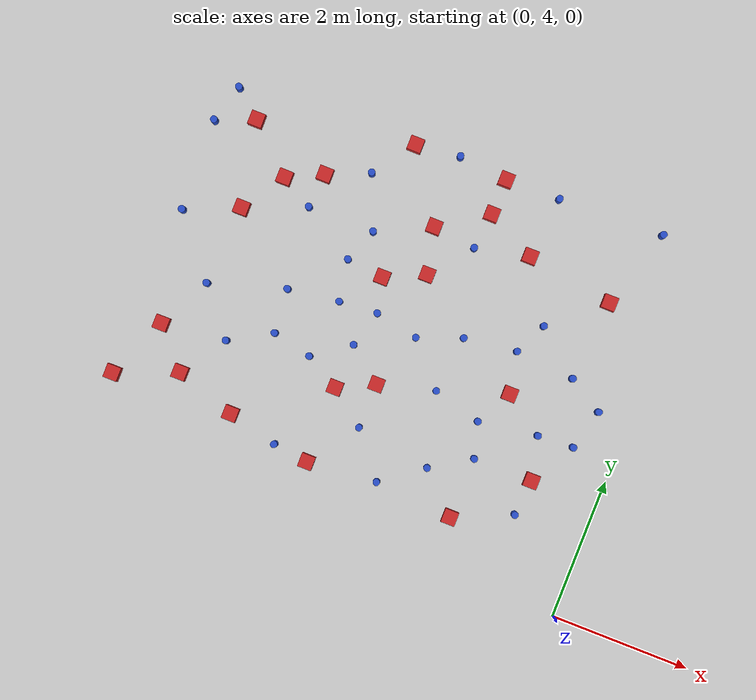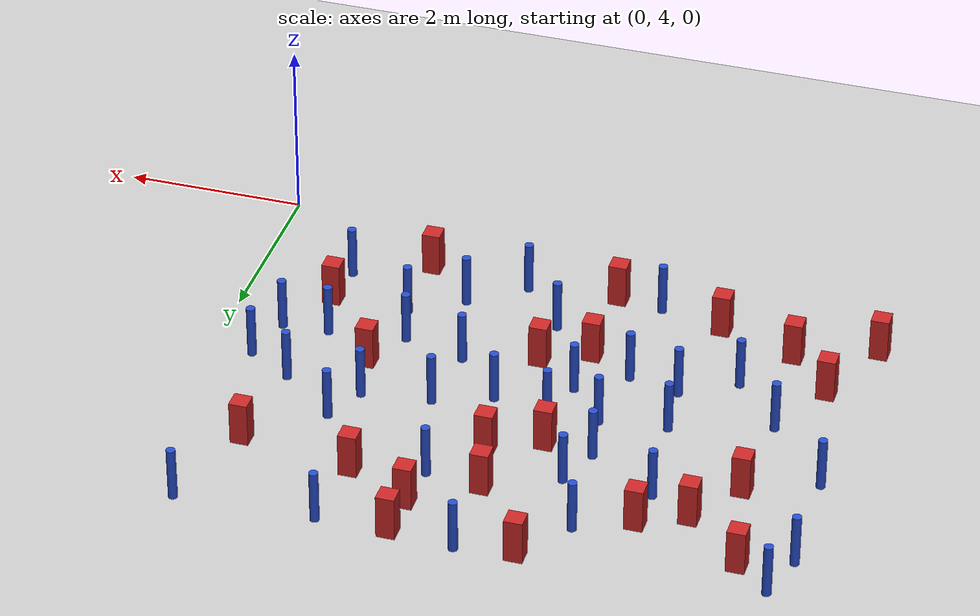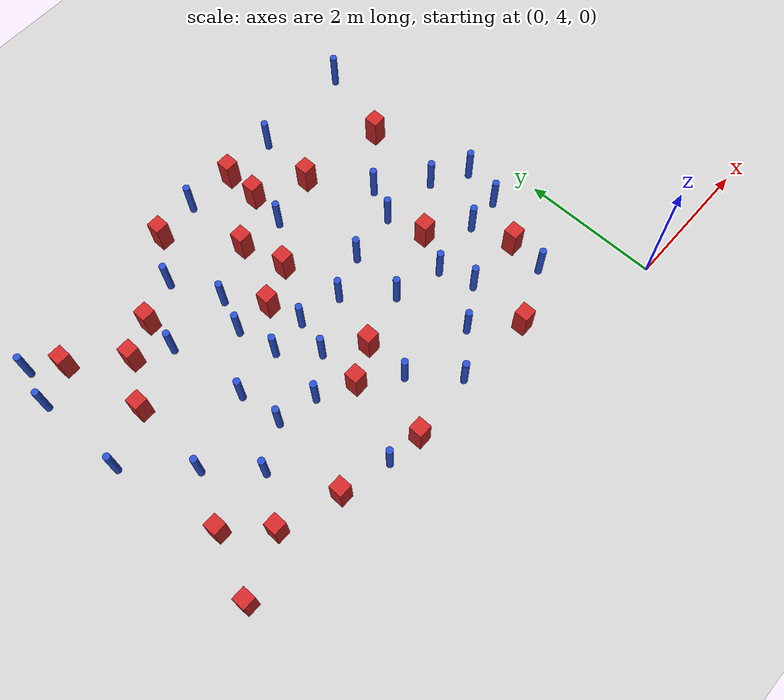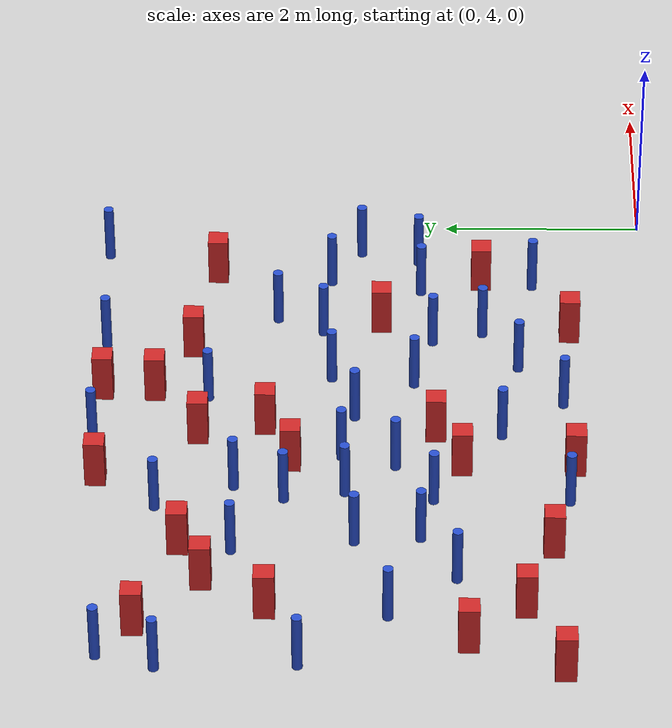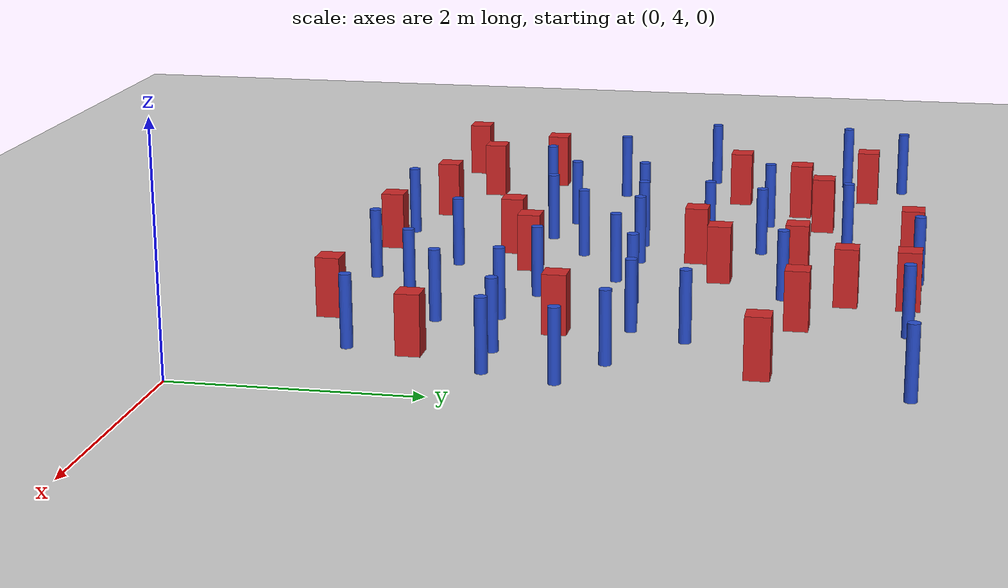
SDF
<sdf version="1.6">
 <world name="default">
  <model name="ground_plane">
   <static>1</static>
   <link name="link">
    <collision name="collision">
     <geometry><plane><normal>0 0 1</normal><size>100 100</size></plane></geometry>
     <surface><friction><ode><mu>100</mu><mu2>50</mu2></ode></friction></surface>
    </collision>
    <visual name="visual">
     <cast_shadows>0</cast_shadows>
     <geometry><plane><normal>0 0 1</normal><size>100 100</size></plane></geometry>
     <material>
      <ambient>1.0 1.0 1.0 1.0</ambient>
      <diffuse>0.8 0.8 0.8 1.0</diffuse>
      <specular>0.01 0.01 0.01 1.000000</specular>
     </material>
    </visual>
   </link>
  </model>
  <model name="square_post_obstacle2">
   <static>true</static>
   <pose>-6.55330883712 5.80059143971 1.91545236811e-07 -7.35059704564e-06 1.12565212e-07 2.39332434364e-05</pose>
   <link name="link">
    <pose>0 0 0.25 0 -0 0</pose>
    <inertial>
     <mass>100</mass>
     <inertia>
      <ixx>0.166667</ixx>
      <ixy>0</ixy>
      <ixz>0</ixz>
      <iyy>0.166667</iyy>
      <iyz>0</iyz>
      <izz>0.166667</izz>
     </inertia>
    </inertial>
    <collision name="collision"><geometry><box><size>.2 .2 .5</size></box></geometry></collision>
    <visual name="visual">
     <geometry><box><size>.2 .2 .5</size></box></geometry>
     <material>
      <script><name>Gazebo/Red</name><uri>file://media/materials/scripts/gazebo.material</uri></script>
     </material>
    </visual>
   </link>
  </model>
  <model name="square_post_obstacle4">
   <static>true</static>
   <pose>-5.7031438525 8.30815203388 1.91545236811e-07 -7.35059704564e-06 1.12565212e-07 2.39332434364e-05</pose>
   <link name="link">
    <pose>0 0 0.25 0 -0 0</pose>
    <inertial>
     <mass>100</mass>
     <inertia>
      <ixx>0.166667</ixx>
      <ixy>0</ixy>
      <ixz>0</ixz>
      <iyy>0.166667</iyy>
      <iyz>0</iyz>
      <izz>0.166667</izz>
     </inertia>
    </inertial>
    <collision name="collision"><geometry><box><size>.2 .2 .5</size></box></geometry></collision>
    <visual name="visual">
     <geometry><box><size>.2 .2 .5</size></box></geometry>
     <material>
      <script><name>Gazebo/Red</name><uri>file://media/materials/scripts/gazebo.material</uri></script>
     </material>
    </visual>
   </link>
  </model>
  <model name="pole_obstacle4">
   <static>true</static>
   <pose>-3.96188056806 6.49615191888 7.38925637345e-09 -8.47170692799e-08 1.24976764985e-08 -1.74513093022e-07</pose>
   <link name="link">
    <pose>0 0 0.3 0 -0 0</pose>
    <inertial>
     <mass>1</mass>
     <inertia><ixx>0.145833</ixx><ixy>0</ixy><ixz>0</ixz><iyy>0.145833</iyy><iyz>0</iyz><izz>0.125</izz></inertia>
    </inertial>
    <collision name="collision">
     <geometry><cylinder><radius>0.05</radius><length>.6</length></cylinder></geometry>
    </collision>
    <visual name="visual">
     <geometry><cylinder><radius>0.05</radius><length>.6</length></cylinder></geometry>
     <material>
      <script><name>Gazebo/Blue</name><uri>file://media/materials/scripts/gazebo.material</uri></script>
     </material>
    </visual>
   </link>
  </model>
  <model name="pole_obstacle10">
   <static>true</static>
   <pose>-1.12531300826 6.25755355994 7.38925637345e-09 -8.47170692799e-08 1.24976765033e-08 -1.74513093018e-07</pose>
   <link name="link">
    <pose>0 0 0.3 0 -0 0</pose>
    <inertial>
     <mass>1</mass>
     <inertia><ixx>0.145833</ixx><ixy>0</ixy><ixz>0</ixz><iyy>0.145833</iyy><iyz>0</iyz><izz>0.125</izz></inertia>
    </inertial>
    <collision name="collision">
     <geometry><cylinder><radius>0.05</radius><length>.6</length></cylinder></geometry>
    </collision>
    <visual name="visual">
     <geometry><cylinder><radius>0.05</radius><length>.6</length></cylinder></geometry>
     <material>
      <script><name>Gazebo/Blue</name><uri>file://media/materials/scripts/gazebo.material</uri></script>
     </material>
    </visual>
   </link>
  </model>
  <model name="pole_obstacle12">
   <static>true</static>
   <pose>-1.02231490212 5.12306557846 7.38925637345e-09 -8.47170692799e-08 1.2497676505e-08 -1.74513093018e-07</pose>
   <link name="link">
    <pose>0 0 0.3 0 -0 0</pose>
    <inertial>
     <mass>1</mass>
     <inertia><ixx>0.145833</ixx><ixy>0</ixy><ixz>0</ixz><iyy>0.145833</iyy><iyz>0</iyz><izz>0.125</izz></inertia>
    </inertial>
    <collision name="collision">
     <geometry><cylinder><radius>0.05</radius><length>.6</length></cylinder></geometry>
    </collision>
    <visual name="visual">
     <geometry><cylinder><radius>0.05</radius><length>.6</length></cylinder></geometry>
     <material>
      <script><name>Gazebo/Blue</name><uri>file://media/materials/scripts/gazebo.material</uri></script>
     </material>
    </visual>
   </link>
  </model>
  <model name="pole_obstacle25">
   <static>true</static>
   <pose>-1.97173539096 6.13829068546 7.38925637345e-09 -8.47170692799e-08 1.2497676507e-08 -1.74513093016e-07</pose>
   <link name="link">
    <pose>0 0 0.3 0 -0 0</pose>
    <inertial>
     <mass>1</mass>
     <inertia><ixx>0.145833</ixx><ixy>0</ixy><ixz>0</ixz><iyy>0.145833</iyy><iyz>0</iyz><izz>0.125</izz></inertia>
    </inertial>
    <collision name="collision">
     <geometry><cylinder><radius>0.05</radius><length>.6</length></cylinder></geometry>
    </collision>
    <visual name="visual">
     <geometry><cylinder><radius>0.05</radius><length>.6</length></cylinder></geometry>
     <material>
      <script><name>Gazebo/Blue</name><uri>file://media/materials/scripts/gazebo.material</uri></script>
     </material>
    </visual>
   </link>
  </model>
  <model name="pole_obstacle26">
   <static>true</static>
   <pose>-4.36678302423 6.981008092 7.38925637345e-09 -8.47170692796e-08 1.24976764786e-08 -1.74513093032e-07</pose>
   <link name="link">
    <pose>0 0 0.3 0 -0 0</pose>
    <inertial>
     <mass>1</mass>
     <inertia><ixx>0.145833</ixx><ixy>0</ixy><ixz>0</ixz><iyy>0.145833</iyy><iyz>0</iyz><izz>0.125</izz></inertia>
    </inertial>
    <collision name="collision">
     <geometry><cylinder><radius>0.05</radius><length>.6</length></cylinder></geometry>
    </collision>
    <visual name="visual">
     <geometry><cylinder><radius>0.05</radius><length>.6</length></cylinder></geometry>
     <material>
      <script><name>Gazebo/Blue</name><uri>file://media/materials/scripts/gazebo.material</uri></script>
     </material>
    </visual>
   </link>
  </model>
  <model name="pole_obstacle41">
   <static>true</static>
   <pose>-6.16991193099 6.54938115663 7.38925637345e-09 -8.47170692796e-08 1.24976764786e-08 -1.74513093032e-07</pose>
   <link name="link">
    <pose>0 0 0.3 0 -0 0</pose>
    <inertial>
     <mass>1</mass>
     <inertia><ixx>0.145833</ixx><ixy>0</ixy><ixz>0</ixz><iyy>0.145833</iyy><iyz>0</iyz><izz>0.125</izz></inertia>
    </inertial>
    <collision name="collision">
     <geometry><cylinder><radius>0.05</radius><length>.6</length></cylinder></geometry>
    </collision>
    <visual name="visual">
     <geometry><cylinder><radius>0.05</radius><length>.6</length></cylinder></geometry>
     <material>
      <script><name>Gazebo/Blue</name><uri>file://media/materials/scripts/gazebo.material</uri></script>
     </material>
    </visual>
   </link>
  </model>
  <model name="pole_obstacle47">
   <static>true</static>
   <pose>-3.53891331987 9.46466004652 7.38925637345e-09 -8.47170692799e-08 1.24976765012e-08 -1.74513093021e-07</pose>
   <link name="link">
    <pose>0 0 0.3 0 -0 0</pose>
    <inertial>
     <mass>1</mass>
     <inertia><ixx>0.145833</ixx><ixy>0</ixy><ixz>0</ixz><iyy>0.145833</iyy><iyz>0</iyz><izz>0.125</izz></inertia>
    </inertial>
    <collision name="collision">
     <geometry><cylinder><radius>0.05</radius><length>.6</length></cylinder></geometry>
    </collision>
    <visual name="visual">
     <geometry><cylinder><radius>0.05</radius><length>.6</length></cylinder></geometry>
     <material>
      <script><name>Gazebo/Blue</name><uri>file://media/materials/scripts/gazebo.material</uri></script>
     </material>
    </visual>
   </link>
  </model>
  <model name="square_post_obstacle51">
   <static>true</static>
   <pose>-3.52160766609 8.43057119418 1.91545236811e-07 -7.35059704564e-06 1.12565212e-07 2.39332434364e-05</pose>
   <link name="link">
    <pose>0 0 0.25 0 -0 0</pose>
    <inertial>
     <mass>100</mass>
     <inertia>
      <ixx>0.166667</ixx>
      <ixy>0</ixy>
      <ixz>0</ixz>
      <iyy>0.166667</iyy>
      <iyz>0</iyz>
      <izz>0.166667</izz>
     </inertia>
    </inertial>
    <collision name="collision"><geometry><box><size>.2 .2 .5</size></box></geometry></collision>
    <visual name="visual">
     <geometry><box><size>.2 .2 .5</size></box></geometry>
     <material>
      <script><name>Gazebo/Red</name><uri>file://media/materials/scripts/gazebo.material</uri></script>
     </material>
    </visual>
   </link>
  </model>
  <model name="pole_obstacle55">
   <static>true</static>
   <pose>-4.59961219676 8.80474779534 7.38925637345e-09 -8.471706928e-08 1.24976765081e-08 -1.74513093015e-07</pose>
   <link name="link">
    <pose>0 0 0.3 0 -0 0</pose>
    <inertial>
     <mass>1</mass>
     <inertia><ixx>0.145833</ixx><ixy>0</ixy><ixz>0</ixz><iyy>0.145833</iyy><iyz>0</iyz><izz>0.125</izz></inertia>
    </inertial>
    <collision name="collision">
     <geometry><cylinder><radius>0.05</radius><length>.6</length></cylinder></geometry>
    </collision>
    <visual name="visual">
     <geometry><cylinder><radius>0.05</radius><length>.6</length></cylinder></geometry>
     <material>
      <script><name>Gazebo/Blue</name><uri>file://media/materials/scripts/gazebo.material</uri></script>
     </material>
    </visual>
   </link>
  </model>
  <model name="square_post_obstacle60">
   <static>true</static>
   <pose>-5.19773577523 8.54897657276 1.91545236811e-07 -7.35059704564e-06 1.12565212e-07 2.39332434364e-05</pose>
   <link name="link">
    <pose>0 0 0.25 0 -0 0</pose>
    <inertial>
     <mass>100</mass>
     <inertia>
      <ixx>0.166667</ixx>
      <ixy>0</ixy>
      <ixz>0</ixz>
      <iyy>0.166667</iyy>
      <iyz>0</iyz>
      <izz>0.166667</izz>
     </inertia>
    </inertial>
    <collision name="collision"><geometry><box><size>.2 .2 .5</size></box></geometry></collision>
    <visual name="visual">
     <geometry><box><size>.2 .2 .5</size></box></geometry>
     <material>
      <script><name>Gazebo/Red</name><uri>file://media/materials/scripts/gazebo.material</uri></script>
     </material>
    </visual>
   </link>
  </model>
  <model name="pole_obstacle61">
   <static>true</static>
   <pose>-2.89891604436 8.35542777784 7.38925637345e-09 -8.47170692793e-08 1.24976764408e-08 -1.74513093041e-07</pose>
   <link name="link">
    <pose>0 0 0.3 0 -0 0</pose>
    <inertial>
     <mass>1</mass>
     <inertia><ixx>0.145833</ixx><ixy>0</ixy><ixz>0</ixz><iyy>0.145833</iyy><iyz>0</iyz><izz>0.125</izz></inertia>
    </inertial>
    <collision name="collision">
     <geometry><cylinder><radius>0.05</radius><length>.6</length></cylinder></geometry>
    </collision>
    <visual name="visual">
     <geometry><cylinder><radius>0.05</radius><length>.6</length></cylinder></geometry>
     <material>
      <script><name>Gazebo/Blue</name><uri>file://media/materials/scripts/gazebo.material</uri></script>
     </material>
    </visual>
   </link>
  </model>
  <model name="pole_obstacle65">
   <static>true</static>
   <pose>-6.89781854437 8.68763136512 7.38925637345e-09 -8.471706928e-08 1.24976765081e-08 -1.74513093015e-07</pose>
   <link name="link">
    <pose>0 0 0.3 0 -0 0</pose>
    <inertial>
     <mass>1</mass>
     <inertia><ixx>0.145833</ixx><ixy>0</ixy><ixz>0</ixz><iyy>0.145833</iyy><iyz>0</iyz><izz>0.125</izz></inertia>
    </inertial>
    <collision name="collision">
     <geometry><cylinder><radius>0.05</radius><length>.6</length></cylinder></geometry>
    </collision>
    <visual name="visual">
     <geometry><cylinder><radius>0.05</radius><length>.6</length></cylinder></geometry>
     <material>
      <script><name>Gazebo/Blue</name><uri>file://media/materials/scripts/gazebo.material</uri></script>
     </material>
    </visual>
   </link>
  </model>
  <model name="square_post_obstacle68">
   <static>true</static>
   <pose>-1.84603409252 4.76177784278 1.91545236811e-07 -7.35059704564e-06 1.12565212e-07 2.39332434364e-05</pose>
   <link name="link">
    <pose>0 0 0.25 0 -0 0</pose>
    <inertial>
     <mass>100</mass>
     <inertia>
      <ixx>0.166667</ixx>
      <ixy>0</ixy>
      <ixz>0</ixz>
      <iyy>0.166667</iyy>
      <iyz>0</iyz>
      <izz>0.166667</izz>
     </inertia>
    </inertial>
    <collision name="collision"><geometry><box><size>.2 .2 .5</size></box></geometry></collision>
    <visual name="visual">
     <geometry><box><size>.2 .2 .5</size></box></geometry>
     <material>
      <script><name>Gazebo/Red</name><uri>file://media/materials/scripts/gazebo.material</uri></script>
     </material>
    </visual>
   </link>
  </model>
  <model name="square_post_obstacle72">
   <static>true</static>
   <pose>-2.82768201751 9.40125721459 1.91545236811e-07 -7.35059704564e-06 1.12565212e-07 2.39332434364e-05</pose>
   <link name="link">
    <pose>0 0 0.25 0 -0 0</pose>
    <inertial>
     <mass>100</mass>
     <inertia>
      <ixx>0.166667</ixx>
      <ixy>0</ixy>
      <ixz>0</ixz>
      <iyy>0.166667</iyy>
      <iyz>0</iyz>
      <izz>0.166667</izz>
     </inertia>
    </inertial>
    <collision name="collision"><geometry><box><size>.2 .2 .5</size></box></geometry></collision>
    <visual name="visual">
     <geometry><box><size>.2 .2 .5</size></box></geometry>
     <material>
      <script><name>Gazebo/Red</name><uri>file://media/materials/scripts/gazebo.material</uri></script>
     </material>
    </visual>
   </link>
  </model>
  <model name="square_post_obstacle75">
   <static>true</static>
   <pose>-5.2025394599 4.98617583692 1.91545236811e-07 -7.35059704564e-06 1.12565212e-07 2.39332434364e-05</pose>
   <link name="link">
    <pose>0 0 0.25 0 -0 0</pose>
    <inertial>
     <mass>100</mass>
     <inertia>
      <ixx>0.166667</ixx>
      <ixy>0</ixy>
      <ixz>0</ixz>
      <iyy>0.166667</iyy>
      <iyz>0</iyz>
      <izz>0.166667</izz>
     </inertia>
    </inertial>
    <collision name="collision"><geometry><box><size>.2 .2 .5</size></box></geometry></collision>
    <visual name="visual">
     <geometry><box><size>.2 .2 .5</size></box></geometry>
     <material>
      <script><name>Gazebo/Red</name><uri>file://media/materials/scripts/gazebo.material</uri></script>
     </material>
    </visual>
   </link>
  </model>
  <model name="pole_obstacle72">
   <static>true</static>
   <pose>-1.81863295968 7.23956448631 7.38925637345e-09 -8.47170692799e-08 1.24976765033e-08 -1.74513093018e-07</pose>
   <link name="link">
    <pose>0 0 0.3 0 -0 0</pose>
    <inertial>
     <mass>1</mass>
     <inertia><ixx>0.145833</ixx><ixy>0</ixy><ixz>0</ixz><iyy>0.145833</iyy><iyz>0</iyz><izz>0.125</izz></inertia>
    </inertial>
    <collision name="collision">
     <geometry><cylinder><radius>0.05</radius><length>.6</length></cylinder></geometry>
    </collision>
    <visual name="visual">
     <geometry><cylinder><radius>0.05</radius><length>.6</length></cylinder></geometry>
     <material>
      <script><name>Gazebo/Blue</name><uri>file://media/materials/scripts/gazebo.material</uri></script>
     </material>
    </visual>
   </link>
  </model>
  <model name="pole_obstacle78">
   <static>true</static>
   <pose>-3.19649911198 6.90304379356 7.38925637345e-09 -8.47170692794e-08 1.24976764468e-08 -1.7451309304e-07</pose>
   <link name="link">
    <pose>0 0 0.3 0 -0 0</pose>
    <inertial>
     <mass>1</mass>
     <inertia><ixx>0.145833</ixx><ixy>0</ixy><ixz>0</ixz><iyy>0.145833</iyy><iyz>0</iyz><izz>0.125</izz></inertia>
    </inertial>
    <collision name="collision">
     <geometry><cylinder><radius>0.05</radius><length>.6</length></cylinder></geometry>
    </collision>
    <visual name="visual">
     <geometry><cylinder><radius>0.05</radius><length>.6</length></cylinder></geometry>
     <material>
      <script><name>Gazebo/Blue</name><uri>file://media/materials/scripts/gazebo.material</uri></script>
     </material>
    </visual>
   </link>
  </model>
  <model name="pole_obstacle82">
   <static>true</static>
   <pose>-3.81674456465 7.02266941737 7.38925637345e-09 -8.47170692798e-08 1.24976765033e-08 -1.74513093019e-07</pose>
   <link name="link">
    <pose>0 0 0.3 0 -0 0</pose>
    <inertial>
     <mass>1</mass>
     <inertia><ixx>0.145833</ixx><ixy>0</ixy><ixz>0</ixz><iyy>0.145833</iyy><iyz>0</iyz><izz>0.125</izz></inertia>
    </inertial>
    <collision name="collision">
     <geometry><cylinder><radius>0.05</radius><length>.6</length></cylinder></geometry>
    </collision>
    <visual name="visual">
     <geometry><cylinder><radius>0.05</radius><length>.6</length></cylinder></geometry>
     <material>
      <script><name>Gazebo/Blue</name><uri>file://media/materials/scripts/gazebo.material</uri></script>
     </material>
    </visual>
   </link>
  </model>
  <model name="pole_obstacle84">
   <static>true</static>
   <pose>-2.66210192664 6.32100580744 7.38925637345e-09 -8.47170692798e-08 1.24976765033e-08 -1.74513093019e-07</pose>
   <link name="link">
    <pose>0 0 0.3 0 -0 0</pose>
    <inertial>
     <mass>1</mass>
     <inertia><ixx>0.145833</ixx><ixy>0</ixy><ixz>0</ixz><iyy>0.145833</iyy><iyz>0</iyz><izz>0.125</izz></inertia>
    </inertial>
    <collision name="collision">
     <geometry><cylinder><radius>0.05</radius><length>.6</length></cylinder></geometry>
    </collision>
    <visual name="visual">
     <geometry><cylinder><radius>0.05</radius><length>.6</length></cylinder></geometry>
     <material>
      <script><name>Gazebo/Blue</name><uri>file://media/materials/scripts/gazebo.material</uri></script>
     </material>
    </visual>
   </link>
  </model>
  <model name="square_post_obstacle90">
   <static>true</static>
   <pose>-2.13134500882 8.53408260791 1.91545236811e-07 -7.35059704564e-06 1.12565212e-07 2.39332434364e-05</pose>
   <link name="link">
    <pose>0 0 0.25 0 -0 0</pose>
    <inertial>
     <mass>100</mass>
     <inertia>
      <ixx>0.166667</ixx>
      <ixy>0</ixy>
      <ixz>0</ixz>
      <iyy>0.166667</iyy>
      <iyz>0</iyz>
      <izz>0.166667</izz>
     </inertia>
    </inertial>
    <collision name="collision"><geometry><box><size>.2 .2 .5</size></box></geometry></collision>
    <visual name="visual">
     <geometry><box><size>.2 .2 .5</size></box></geometry>
     <material>
      <script><name>Gazebo/Red</name><uri>file://media/materials/scripts/gazebo.material</uri></script>
     </material>
    </visual>
   </link>
  </model>
  <model name="pole_obstacle105">
   <static>true</static>
   <pose>-6.74098376526 9.23417818825 7.38925637345e-09 -8.471706928e-08 1.24976765081e-08 -1.74513093015e-07</pose>
   <link name="link">
    <pose>0 0 0.3 0 -0 0</pose>
    <inertial>
     <mass>1</mass>
     <inertia><ixx>0.145833</ixx><ixy>0</ixy><ixz>0</ixz><iyy>0.145833</iyy><iyz>0</iyz><izz>0.125</izz></inertia>
    </inertial>
    <collision name="collision">
     <geometry><cylinder><radius>0.05</radius><length>.6</length></cylinder></geometry>
    </collision>
    <visual name="visual">
     <geometry><cylinder><radius>0.05</radius><length>.6</length></cylinder></geometry>
     <material>
      <script><name>Gazebo/Blue</name><uri>file://media/materials/scripts/gazebo.material</uri></script>
     </material>
    </visual>
   </link>
  </model>
  <model name="square_post_obstacle97">
   <static>true</static>
   <pose>-3.36924682812 7.77776344247 1.91545236811e-07 -7.35059704564e-06 1.12565212e-07 2.39332434364e-05</pose>
   <link name="link">
    <pose>0 0 0.25 0 -0 0</pose>
    <inertial>
     <mass>100</mass>
     <inertia>
      <ixx>0.166667</ixx>
      <ixy>0</ixy>
      <ixz>0</ixz>
      <iyy>0.166667</iyy>
      <iyz>0</iyz>
      <izz>0.166667</izz>
     </inertia>
    </inertial>
    <collision name="collision"><geometry><box><size>.2 .2 .5</size></box></geometry></collision>
    <visual name="visual">
     <geometry><box><size>.2 .2 .5</size></box></geometry>
     <material>
      <script><name>Gazebo/Red</name><uri>file://media/materials/scripts/gazebo.material</uri></script>
     </material>
    </visual>
   </link>
  </model>
  <model name="pole_obstacle110">
   <static>true</static>
   <pose>-3.47279812764 5.45671535539 7.38925637345e-09 -8.47170692798e-08 1.24976765033e-08 -1.74513093019e-07</pose>
   <link name="link">
    <pose>0 0 0.3 0 -0 0</pose>
    <inertial>
     <mass>1</mass>
     <inertia><ixx>0.145833</ixx><ixy>0</ixy><ixz>0</ixz><iyy>0.145833</iyy><iyz>0</iyz><izz>0.125</izz></inertia>
    </inertial>
    <collision name="collision">
     <geometry><cylinder><radius>0.05</radius><length>.6</length></cylinder></geometry>
    </collision>
    <visual name="visual">
     <geometry><cylinder><radius>0.05</radius><length>.6</length></cylinder></geometry>
     <material>
      <script><name>Gazebo/Blue</name><uri>file://media/materials/scripts/gazebo.material</uri></script>
     </material>
    </visual>
   </link>
  </model>
  <model name="square_post_obstacle100">
   <static>true</static>
   <pose>-4.17623640561 9.39427509879 1.91545236811e-07 -7.35059704564e-06 1.12565212e-07 2.39332434364e-05</pose>
   <link name="link">
    <pose>0 0 0.25 0 -0 0</pose>
    <inertial>
     <mass>100</mass>
     <inertia>
      <ixx>0.166667</ixx>
      <ixy>0</ixy>
      <ixz>0</ixz>
      <iyy>0.166667</iyy>
      <iyz>0</iyz>
      <izz>0.166667</izz>
     </inertia>
    </inertial>
    <collision name="collision"><geometry><box><size>.2 .2 .5</size></box></geometry></collision>
    <visual name="visual">
     <geometry><box><size>.2 .2 .5</size></box></geometry>
     <material>
      <script><name>Gazebo/Red</name><uri>file://media/materials/scripts/gazebo.material</uri></script>
     </material>
    </visual>
   </link>
  </model>
  <model name="pole_obstacle114">
   <static>true</static>
   <pose>-4.48305606699 4.81301621915 7.38925637345e-09 -8.47170692796e-08 1.24976764786e-08 -1.74513093032e-07</pose>
   <link name="link">
    <pose>0 0 0.3 0 -0 0</pose>
    <inertial>
     <mass>1</mass>
     <inertia><ixx>0.145833</ixx><ixy>0</ixy><ixz>0</ixz><iyy>0.145833</iyy><iyz>0</iyz><izz>0.125</izz></inertia>
    </inertial>
    <collision name="collision">
     <geometry><cylinder><radius>0.05</radius><length>.6</length></cylinder></geometry>
    </collision>
    <visual name="visual">
     <geometry><cylinder><radius>0.05</radius><length>.6</length></cylinder></geometry>
     <material>
      <script><name>Gazebo/Blue</name><uri>file://media/materials/scripts/gazebo.material</uri></script>
     </material>
    </visual>
   </link>
  </model>
  <model name="pole_obstacle118">
   <static>true</static>
   <pose>-2.04568690174 9.41710770158 7.38925637345e-09 -8.47170692797e-08 1.24976764827e-08 -1.7451309303e-07</pose>
   <link name="link">
    <pose>0 0 0.3 0 -0 0</pose>
    <inertial>
     <mass>1</mass>
     <inertia><ixx>0.145833</ixx><ixy>0</ixy><ixz>0</ixz><iyy>0.145833</iyy><iyz>0</iyz><izz>0.125</izz></inertia>
    </inertial>
    <collision name="collision">
     <geometry><cylinder><radius>0.05</radius><length>.6</length></cylinder></geometry>
    </collision>
    <visual name="visual">
     <geometry><cylinder><radius>0.05</radius><length>.6</length></cylinder></geometry>
     <material>
      <script><name>Gazebo/Blue</name><uri>file://media/materials/scripts/gazebo.material</uri></script>
     </material>
    </visual>
   </link>
  </model>
  <model name="pole_obstacle124">
   <static>true</static>
   <pose>-4.47613467704 6.12499476383 7.38925637345e-09 -8.47170692796e-08 1.24976764786e-08 -1.74513093032e-07</pose>
   <link name="link">
    <pose>0 0 0.3 0 -0 0</pose>
    <inertial>
     <mass>1</mass>
     <inertia><ixx>0.145833</ixx><ixy>0</ixy><ixz>0</ixz><iyy>0.145833</iyy><iyz>0</iyz><izz>0.125</izz></inertia>
    </inertial>
    <collision name="collision">
     <geometry><cylinder><radius>0.05</radius><length>.6</length></cylinder></geometry>
    </collision>
    <visual name="visual">
     <geometry><cylinder><radius>0.05</radius><length>.6</length></cylinder></geometry>
     <material>
      <script><name>Gazebo/Blue</name><uri>file://media/materials/scripts/gazebo.material</uri></script>
     </material>
    </visual>
   </link>
  </model>
  <model name="pole_obstacle125">
   <static>true</static>
   <pose>-5.62990734497 5.90447277835 7.38925637345e-09 -8.47170692796e-08 1.24976764786e-08 -1.74513093032e-07</pose>
   <link name="link">
    <pose>0 0 0.3 0 -0 0</pose>
    <inertial>
     <mass>1</mass>
     <inertia><ixx>0.145833</ixx><ixy>0</ixy><ixz>0</ixz><iyy>0.145833</iyy><iyz>0</iyz><izz>0.125</izz></inertia>
    </inertial>
    <collision name="collision">
     <geometry><cylinder><radius>0.05</radius><length>.6</length></cylinder></geometry>
    </collision>
    <visual name="visual">
     <geometry><cylinder><radius>0.05</radius><length>.6</length></cylinder></geometry>
     <material>
      <script><name>Gazebo/Blue</name><uri>file://media/materials/scripts/gazebo.material</uri></script>
     </material>
    </visual>
   </link>
  </model>
  <model name="square_post_obstacle119">
   <static>true</static>
   <pose>-2.84086776463 8.88616444582 1.91545236811e-07 -7.35059704564e-06 1.12565212e-07 2.39332434364e-05</pose>
   <link name="link">
    <pose>0 0 0.25 0 -0 0</pose>
    <inertial>
     <mass>100</mass>
     <inertia>
      <ixx>0.166667</ixx>
      <ixy>0</ixy>
      <ixz>0</ixz>
      <iyy>0.166667</iyy>
      <iyz>0</iyz>
      <izz>0.166667</izz>
     </inertia>
    </inertial>
    <collision name="collision"><geometry><box><size>.2 .2 .5</size></box></geometry></collision>
    <visual name="visual">
     <geometry><box><size>.2 .2 .5</size></box></geometry>
     <material>
      <script><name>Gazebo/Red</name><uri>file://media/materials/scripts/gazebo.material</uri></script>
     </material>
    </visual>
   </link>
  </model>
  <model name="pole_obstacle151">
   <static>true</static>
   <pose>-2.39091445174 5.28233553591 7.38925637345e-09 -8.47170692798e-08 1.24976765033e-08 -1.74513093019e-07</pose>
   <link name="link">
    <pose>0 0 0.3 0 -0 0</pose>
    <inertial>
     <mass>1</mass>
     <inertia><ixx>0.145833</ixx><ixy>0</ixy><ixz>0</ixz><iyy>0.145833</iyy><iyz>0</iyz><izz>0.125</izz></inertia>
    </inertial>
    <collision name="collision">
     <geometry><cylinder><radius>0.05</radius><length>.6</length></cylinder></geometry>
    </collision>
    <visual name="visual">
     <geometry><cylinder><radius>0.05</radius><length>.6</length></cylinder></geometry>
     <material>
      <script><name>Gazebo/Blue</name><uri>file://media/materials/scripts/gazebo.material</uri></script>
     </material>
    </visual>
   </link>
  </model>
  <model name="pole_obstacle155">
   <static>true</static>
   <pose>-2.97157767565 4.84381899937 7.38925637345e-09 -8.47170692798e-08 1.24976765033e-08 -1.74513093019e-07</pose>
   <link name="link">
    <pose>0 0 0.3 0 -0 0</pose>
    <inertial>
     <mass>1</mass>
     <inertia><ixx>0.145833</ixx><ixy>0</ixy><ixz>0</ixz><iyy>0.145833</iyy><iyz>0</iyz><izz>0.125</izz></inertia>
    </inertial>
    <collision name="collision">
     <geometry><cylinder><radius>0.05</radius><length>.6</length></cylinder></geometry>
    </collision>
    <visual name="visual">
     <geometry><cylinder><radius>0.05</radius><length>.6</length></cylinder></geometry>
     <material>
      <script><name>Gazebo/Blue</name><uri>file://media/materials/scripts/gazebo.material</uri></script>
     </material>
    </visual>
   </link>
  </model>
  <model name="pole_obstacle158">
   <static>true</static>
   <pose>-5.03982182032 6.24761823569 7.38925637345e-09 -8.47170692796e-08 1.24976764786e-08 -1.74513093032e-07</pose>
   <link name="link">
    <pose>0 0 0.3 0 -0 0</pose>
    <inertial>
     <mass>1</mass>
     <inertia><ixx>0.145833</ixx><ixy>0</ixy><ixz>0</ixz><iyy>0.145833</iyy><iyz>0</iyz><izz>0.125</izz></inertia>
    </inertial>
    <collision name="collision">
     <geometry><cylinder><radius>0.05</radius><length>.6</length></cylinder></geometry>
    </collision>
    <visual name="visual">
     <geometry><cylinder><radius>0.05</radius><length>.6</length></cylinder></geometry>
     <material>
      <script><name>Gazebo/Blue</name><uri>file://media/materials/scripts/gazebo.material</uri></script>
     </material>
    </visual>
   </link>
  </model>
  <model name="pole_obstacle159">
   <static>true</static>
   <pose>-1.60340567133 7.70127921311 7.38925637345e-09 -8.47170692799e-08 1.24976765033e-08 -1.74513093018e-07</pose>
   <link name="link">
    <pose>0 0 0.3 0 -0 0</pose>
    <inertial>
     <mass>1</mass>
     <inertia><ixx>0.145833</ixx><ixy>0</ixy><ixz>0</ixz><iyy>0.145833</iyy><iyz>0</iyz><izz>0.125</izz></inertia>
    </inertial>
    <collision name="collision">
     <geometry><cylinder><radius>0.05</radius><length>.6</length></cylinder></geometry>
    </collision>
    <visual name="visual">
     <geometry><cylinder><radius>0.05</radius><length>.6</length></cylinder></geometry>
     <material>
      <script><name>Gazebo/Blue</name><uri>file://media/materials/scripts/gazebo.material</uri></script>
     </material>
    </visual>
   </link>
  </model>
  <model name="pole_obstacle162">
   <static>true</static>
   <pose>-4.46881828948 7.56884950981 7.38925637345e-09 -8.47170692796e-08 1.24976764786e-08 -1.74513093032e-07</pose>
   <link name="link">
    <pose>0 0 0.3 0 -0 0</pose>
    <inertial>
     <mass>1</mass>
     <inertia><ixx>0.145833</ixx><ixy>0</ixy><ixz>0</ixz><iyy>0.145833</iyy><iyz>0</iyz><izz>0.125</izz></inertia>
    </inertial>
    <collision name="collision">
     <geometry><cylinder><radius>0.05</radius><length>.6</length></cylinder></geometry>
    </collision>
    <visual name="visual">
     <geometry><cylinder><radius>0.05</radius><length>.6</length></cylinder></geometry>
     <material>
      <script><name>Gazebo/Blue</name><uri>file://media/materials/scripts/gazebo.material</uri></script>
     </material>
    </visual>
   </link>
  </model>
  <model name="square_post_obstacle154">
   <static>true</static>
   <pose>-0.97684703183 5.64565577131 1.91545236811e-07 -7.35059704564e-06 1.12565212e-07 2.39332434364e-05</pose>
   <link name="link">
    <pose>0 0 0.25 0 -0 0</pose>
    <inertial>
     <mass>100</mass>
     <inertia>
      <ixx>0.166667</ixx>
      <ixy>0</ixy>
      <ixz>0</ixz>
      <iyy>0.166667</iyy>
      <iyz>0</iyz>
      <izz>0.166667</izz>
     </inertia>
    </inertial>
    <collision name="collision"><geometry><box><size>.2 .2 .5</size></box></geometry></collision>
    <visual name="visual">
     <geometry><box><size>.2 .2 .5</size></box></geometry>
     <material>
      <script><name>Gazebo/Red</name><uri>file://media/materials/scripts/gazebo.material</uri></script>
     </material>
    </visual>
   </link>
  </model>
  <model name="pole_obstacle165">
   <static>true</static>
   <pose>-0.52777584166 9.47909555454 7.38925637345e-09 -8.47170692796e-08 1.24976764704e-08 -1.74513093037e-07</pose>
   <link name="link">
    <pose>0 0 0.3 0 -0 0</pose>
    <inertial>
     <mass>1</mass>
     <inertia><ixx>0.145833</ixx><ixy>0</ixy><ixz>0</ixz><iyy>0.145833</iyy><iyz>0</iyz><izz>0.125</izz></inertia>
    </inertial>
    <collision name="collision">
     <geometry><cylinder><radius>0.05</radius><length>.6</length></cylinder></geometry>
    </collision>
    <visual name="visual">
     <geometry><cylinder><radius>0.05</radius><length>.6</length></cylinder></geometry>
     <material>
      <script><name>Gazebo/Blue</name><uri>file://media/materials/scripts/gazebo.material</uri></script>
     </material>
    </visual>
   </link>
  </model>
  <model name="square_post_obstacle159">
   <static>true</static>
   <pose>-3.46691066888 6.10491457632 1.91545236811e-07 -7.35059704564e-06 1.12565212e-07 2.39332434364e-05</pose>
   <link name="link">
    <pose>0 0 0.25 0 -0 0</pose>
    <inertial>
     <mass>100</mass>
     <inertia>
      <ixx>0.166667</ixx>
      <ixy>0</ixy>
      <ixz>0</ixz>
      <iyy>0.166667</iyy>
      <iyz>0</iyz>
      <izz>0.166667</izz>
     </inertia>
    </inertial>
    <collision name="collision"><geometry><box><size>.2 .2 .5</size></box></geometry></collision>
    <visual name="visual">
     <geometry><box><size>.2 .2 .5</size></box></geometry>
     <material>
      <script><name>Gazebo/Red</name><uri>file://media/materials/scripts/gazebo.material</uri></script>
     </material>
    </visual>
   </link>
  </model>
  <model name="square_post_obstacle160">
   <static>true</static>
   <pose>-6.10485086686 7.69857562272 1.91545236811e-07 -7.35059704564e-06 1.12565212e-07 2.39332434364e-05</pose>
   <link name="link">
    <pose>0 0 0.25 0 -0 0</pose>
    <inertial>
     <mass>100</mass>
     <inertia>
      <ixx>0.166667</ixx>
      <ixy>0</ixy>
      <ixz>0</ixz>
      <iyy>0.166667</iyy>
      <iyz>0</iyz>
      <izz>0.166667</izz>
     </inertia>
    </inertial>
    <collision name="collision"><geometry><box><size>.2 .2 .5</size></box></geometry></collision>
    <visual name="visual">
     <geometry><box><size>.2 .2 .5</size></box></geometry>
     <material>
      <script><name>Gazebo/Red</name><uri>file://media/materials/scripts/gazebo.material</uri></script>
     </material>
    </visual>
   </link>
  </model>
  <model name="pole_obstacle168">
   <static>true</static>
   <pose>-4.28519620687 8.05550686258 7.38925637345e-09 -8.471706928e-08 1.24976765081e-08 -1.74513093015e-07</pose>
   <link name="link">
    <pose>0 0 0.3 0 -0 0</pose>
    <inertial>
     <mass>1</mass>
     <inertia><ixx>0.145833</ixx><ixy>0</ixy><ixz>0</ixz><iyy>0.145833</iyy><iyz>0</iyz><izz>0.125</izz></inertia>
    </inertial>
    <collision name="collision">
     <geometry><cylinder><radius>0.05</radius><length>.6</length></cylinder></geometry>
    </collision>
    <visual name="visual">
     <geometry><cylinder><radius>0.05</radius><length>.6</length></cylinder></geometry>
     <material>
      <script><name>Gazebo/Blue</name><uri>file://media/materials/scripts/gazebo.material</uri></script>
     </material>
    </visual>
   </link>
  </model>
  <model name="pole_obstacle173">
   <static>true</static>
   <pose>-1.82878178014 5.63831068164 7.38925637345e-09 -8.47170692799e-08 1.24976765033e-08 -1.74513093018e-07</pose>
   <link name="link">
    <pose>0 0 0.3 0 -0 0</pose>
    <inertial>
     <mass>1</mass>
     <inertia><ixx>0.145833</ixx><ixy>0</ixy><ixz>0</ixz><iyy>0.145833</iyy><iyz>0</iyz><izz>0.125</izz></inertia>
    </inertial>
    <collision name="collision">
     <geometry><cylinder><radius>0.05</radius><length>.6</length></cylinder></geometry>
    </collision>
    <visual name="visual">
     <geometry><cylinder><radius>0.05</radius><length>.6</length></cylinder></geometry>
     <material>
      <script><name>Gazebo/Blue</name><uri>file://media/materials/scripts/gazebo.material</uri></script>
     </material>
    </visual>
   </link>
  </model>
  <model name="square_post_obstacle169">
   <static>true</static>
   <pose>-3.93712104241 7.51600539756 1.91545236811e-07 -7.35059704564e-06 1.12565212e-07 2.39332434364e-05</pose>
   <link name="link">
    <pose>0 0 0.25 0 -0 0</pose>
    <inertial>
     <mass>100</mass>
     <inertia>
      <ixx>0.166667</ixx>
      <ixy>0</ixy>
      <ixz>0</ixz>
      <iyy>0.166667</iyy>
      <iyz>0</iyz>
      <izz>0.166667</izz>
     </inertia>
    </inertial>
    <collision name="collision"><geometry><box><size>.2 .2 .5</size></box></geometry></collision>
    <visual name="visual">
     <geometry><box><size>.2 .2 .5</size></box></geometry>
     <material>
      <script><name>Gazebo/Red</name><uri>file://media/materials/scripts/gazebo.material</uri></script>
     </material>
    </visual>
   </link>
  </model>
  <model name="pole_obstacle179">
   <static>true</static>
   <pose>-5.2387315391 8.04671604963 7.38925637345e-09 -8.47170692797e-08 1.24976764908e-08 -1.74513093024e-07</pose>
   <link name="link">
    <pose>0 0 0.3 0 -0 0</pose>
    <inertial>
     <mass>1</mass>
     <inertia><ixx>0.145833</ixx><ixy>0</ixy><ixz>0</ixz><iyy>0.145833</iyy><iyz>0</iyz><izz>0.125</izz></inertia>
    </inertial>
    <collision name="collision">
     <geometry><cylinder><radius>0.05</radius><length>.6</length></cylinder></geometry>
    </collision>
    <visual name="visual">
     <geometry><cylinder><radius>0.05</radius><length>.6</length></cylinder></geometry>
     <material>
      <script><name>Gazebo/Blue</name><uri>file://media/materials/scripts/gazebo.material</uri></script>
     </material>
    </visual>
   </link>
  </model>
  <model name="pole_obstacle183">
   <static>true</static>
   <pose>-0.965847256347 7.17006081658 7.38925637345e-09 -8.47170692799e-08 1.2497676509e-08 -1.74513093015e-07</pose>
   <link name="link">
    <pose>0 0 0.3 0 -0 0</pose>
    <inertial>
     <mass>1</mass>
     <inertia><ixx>0.145833</ixx><ixy>0</ixy><ixz>0</ixz><iyy>0.145833</iyy><iyz>0</iyz><izz>0.125</izz></inertia>
    </inertial>
    <collision name="collision">
     <geometry><cylinder><radius>0.05</radius><length>.6</length></cylinder></geometry>
    </collision>
    <visual name="visual">
     <geometry><cylinder><radius>0.05</radius><length>.6</length></cylinder></geometry>
     <material>
      <script><name>Gazebo/Blue</name><uri>file://media/materials/scripts/gazebo.material</uri></script>
     </material>
    </visual>
   </link>
  </model>
  <model name="pole_obstacle184">
   <static>true</static>
   <pose>-0.461958252637 6.87010672149 7.38925637345e-09 -8.471706928e-08 1.24976765062e-08 -1.74513093016e-07</pose>
   <link name="link">
    <pose>0 0 0.3 0 -0 0</pose>
    <inertial>
     <mass>1</mass>
     <inertia><ixx>0.145833</ixx><ixy>0</ixy><ixz>0</ixz><iyy>0.145833</iyy><iyz>0</iyz><izz>0.125</izz></inertia>
    </inertial>
    <collision name="collision">
     <geometry><cylinder><radius>0.05</radius><length>.6</length></cylinder></geometry>
    </collision>
    <visual name="visual">
     <geometry><cylinder><radius>0.05</radius><length>.6</length></cylinder></geometry>
     <material>
      <script><name>Gazebo/Blue</name><uri>file://media/materials/scripts/gazebo.material</uri></script>
     </material>
    </visual>
   </link>
  </model>
  <model name="square_post_obstacle175">
   <static>true</static>
   <pose>-1.69675964397 6.65482781558 1.91545236811e-07 -7.35059704564e-06 1.12565212e-07 2.39332434364e-05</pose>
   <link name="link">
    <pose>0 0 0.25 0 -0 0</pose>
    <inertial>
     <mass>100</mass>
     <inertia>
      <ixx>0.166667</ixx>
      <ixy>0</ixy>
      <ixz>0</ixz>
      <iyy>0.166667</iyy>
      <iyz>0</iyz>
      <izz>0.166667</izz>
     </inertia>
    </inertial>
    <collision name="collision"><geometry><box><size>.2 .2 .5</size></box></geometry></collision>
    <visual name="visual">
     <geometry><box><size>.2 .2 .5</size></box></geometry>
     <material>
      <script><name>Gazebo/Red</name><uri>file://media/materials/scripts/gazebo.material</uri></script>
     </material>
    </visual>
   </link>
  </model>
  <model name="square_post_obstacle178">
   <static>true</static>
   <pose>-6.35538530485 8.91084351321 1.91545236811e-07 -7.35059704564e-06 1.12565212e-07 2.39332434364e-05</pose>
   <link name="link">
    <pose>0 0 0.25 0 -0 0</pose>
    <inertial>
     <mass>100</mass>
     <inertia>
      <ixx>0.166667</ixx>
      <ixy>0</ixy>
      <ixz>0</ixz>
      <iyy>0.166667</iyy>
      <iyz>0</iyz>
      <izz>0.166667</izz>
     </inertia>
    </inertial>
    <collision name="collision"><geometry><box><size>.2 .2 .5</size></box></geometry></collision>
    <visual name="visual">
     <geometry><box><size>.2 .2 .5</size></box></geometry>
     <material>
      <script><name>Gazebo/Red</name><uri>file://media/materials/scripts/gazebo.material</uri></script>
     </material>
    </visual>
   </link>
  </model>
  <model name="square_post_obstacle191">
   <static>true</static>
   <pose>-3.97606969404 4.75161325184 1.91545236811e-07 -7.35059704564e-06 1.12565212e-07 2.39332434364e-05</pose>
   <link name="link">
    <pose>0 0 0.25 0 -0 0</pose>
    <inertial>
     <mass>100</mass>
     <inertia>
      <ixx>0.166667</ixx>
      <ixy>0</ixy>
      <ixz>0</ixz>
      <iyy>0.166667</iyy>
      <iyz>0</iyz>
      <izz>0.166667</izz>
     </inertia>
    </inertial>
    <collision name="collision"><geometry><box><size>.2 .2 .5</size></box></geometry></collision>
    <visual name="visual">
     <geometry><box><size>.2 .2 .5</size></box></geometry>
     <material>
      <script><name>Gazebo/Red</name><uri>file://media/materials/scripts/gazebo.material</uri></script>
     </material>
    </visual>
   </link>
  </model>
  <model name="square_post_obstacle193">
   <static>true</static>
   <pose>-6.06415466912 5.26157301731 1.91545236811e-07 -7.35059704564e-06 1.12565212e-07 2.39332434364e-05</pose>
   <link name="link">
    <pose>0 0 0.25 0 -0 0</pose>
    <inertial>
     <mass>100</mass>
     <inertia>
      <ixx>0.166667</ixx>
      <ixy>0</ixy>
      <ixz>0</ixz>
      <iyy>0.166667</iyy>
      <iyz>0</iyz>
      <izz>0.166667</izz>
     </inertia>
    </inertial>
    <collision name="collision"><geometry><box><size>.2 .2 .5</size></box></geometry></collision>
    <visual name="visual">
     <geometry><box><size>.2 .2 .5</size></box></geometry>
     <material>
      <script><name>Gazebo/Red</name><uri>file://media/materials/scripts/gazebo.material</uri></script>
     </material>
    </visual>
   </link>
  </model>
  <model name="square_post_obstacle194">
   <static>true</static>
   <pose>-0.872891257242 8.33852698935 1.91545236811e-07 -7.35059704564e-06 1.12565212e-07 2.39332434364e-05</pose>
   <link name="link">
    <pose>0 0 0.25 0 -0 0</pose>
    <inertial>
     <mass>100</mass>
     <inertia>
      <ixx>0.166667</ixx>
      <ixy>0</ixy>
      <ixz>0</ixz>
      <iyy>0.166667</iyy>
      <iyz>0</iyz>
      <izz>0.166667</izz>
     </inertia>
    </inertial>
    <collision name="collision"><geometry><box><size>.2 .2 .5</size></box></geometry></collision>
    <visual name="visual">
     <geometry><box><size>.2 .2 .5</size></box></geometry>
     <material>
      <script><name>Gazebo/Red</name><uri>file://media/materials/scripts/gazebo.material</uri></script>
     </material>
    </visual>
   </link>
  </model>
  <model name="square_post_obstacle196">
   <static>true</static>
   <pose>-3.98602995116 5.85197900039 1.91545236811e-07 -7.35059704564e-06 1.12565212e-07 2.39332434364e-05</pose>
   <link name="link">
    <pose>0 0 0.25 0 -0 0</pose>
    <inertial>
     <mass>100</mass>
     <inertia>
      <ixx>0.166667</ixx>
      <ixy>0</ixy>
      <ixz>0</ixz>
      <iyy>0.166667</iyy>
      <iyz>0</iyz>
      <izz>0.166667</izz>
     </inertia>
    </inertial>
    <collision name="collision"><geometry><box><size>.2 .2 .5</size></box></geometry></collision>
    <visual name="visual">
     <geometry><box><size>.2 .2 .5</size></box></geometry>
     <material>
      <script><name>Gazebo/Red</name><uri>file://media/materials/scripts/gazebo.material</uri></script>
     </material>
    </visual>
   </link>
  </model>
  <model name="square_post_obstacle198">
   <static>true</static>
   <pose>-6.93389117963 4.91654596476 1.91545236811e-07 -7.35059704564e-06 1.12565212e-07 2.39332434364e-05</pose>
   <link name="link">
    <pose>0 0 0.25 0 -0 0</pose>
    <inertial>
     <mass>100</mass>
     <inertia>
      <ixx>0.166667</ixx>
      <ixy>0</ixy>
      <ixz>0</ixz>
      <iyy>0.166667</iyy>
      <iyz>0</iyz>
      <izz>0.166667</izz>
     </inertia>
    </inertial>
    <collision name="collision"><geometry><box><size>.2 .2 .5</size></box></geometry></collision>
    <visual name="visual">
     <geometry><box><size>.2 .2 .5</size></box></geometry>
     <material>
      <script><name>Gazebo/Red</name><uri>file://media/materials/scripts/gazebo.material</uri></script>
     </material>
    </visual>
   </link>
  </model>
  <model name="pole_obstacle190">
   <static>true</static>
   <pose>-2.57599478826 7.14044641854 7.38925637345e-09 -8.47170692798e-08 1.24976765033e-08 -1.74513093019e-07</pose>
   <link name="link">
    <pose>0 0 0.3 0 -0 0</pose>
    <inertial>
     <mass>1</mass>
     <inertia><ixx>0.145833</ixx><ixy>0</ixy><ixz>0</ixz><iyy>0.145833</iyy><iyz>0</iyz><izz>0.125</izz></inertia>
    </inertial>
    <collision name="collision">
     <geometry><cylinder><radius>0.05</radius><length>.6</length></cylinder></geometry>
    </collision>
    <visual name="visual">
     <geometry><cylinder><radius>0.05</radius><length>.6</length></cylinder></geometry>
     <material>
      <script><name>Gazebo/Blue</name><uri>file://media/materials/scripts/gazebo.material</uri></script>
     </material>
    </visual>
   </link>
  </model>
  <model name="pole_obstacle196">
   <static>true</static>
   <pose>-5.09840640147 6.88060216578 7.38925637345e-09 -8.47170692796e-08 1.24976764786e-08 -1.74513093032e-07</pose>
   <link name="link">
    <pose>0 0 0.3 0 -0 0</pose>
    <inertial>
     <mass>1</mass>
     <inertia><ixx>0.145833</ixx><ixy>0</ixy><ixz>0</ixz><iyy>0.145833</iyy><iyz>0</iyz><izz>0.125</izz></inertia>
    </inertial>
    <collision name="collision">
     <geometry><cylinder><radius>0.05</radius><length>.6</length></cylinder></geometry>
    </collision>
    <visual name="visual">
     <geometry><cylinder><radius>0.05</radius><length>.6</length></cylinder></geometry>
     <material>
      <script><name>Gazebo/Blue</name><uri>file://media/materials/scripts/gazebo.material</uri></script>
     </material>
    </visual>
   </link>
  </model>
  <model name="pole_obstacle208">
   <static>true</static>
   <pose>-6.8587370549 7.37262338499 7.38925637345e-09 -8.47170692796e-08 1.24976764786e-08 -1.74513093032e-07</pose>
   <link name="link">
    <pose>0 0 0.3 0 -0 0</pose>
    <inertial>
     <mass>1</mass>
     <inertia><ixx>0.145833</ixx><ixy>0</ixy><ixz>0</ixz><iyy>0.145833</iyy><iyz>0</iyz><izz>0.125</izz></inertia>
    </inertial>
    <collision name="collision">
     <geometry><cylinder><radius>0.05</radius><length>.6</length></cylinder></geometry>
    </collision>
    <visual name="visual">
     <geometry><cylinder><radius>0.05</radius><length>.6</length></cylinder></geometry>
     <material>
      <script><name>Gazebo/Blue</name><uri>file://media/materials/scripts/gazebo.material</uri></script>
     </material>
    </visual>
   </link>
  </model>
  <model name="pole_obstacle221">
   <static>true</static>
   <pose>-0.609765990425 6.28506002078 7.38925637345e-09 -8.471706928e-08 1.24976765086e-08 -1.74513093015e-07</pose>
   <link name="link">
    <pose>0 0 0.3 0 -0 0</pose>
    <inertial>
     <mass>1</mass>
     <inertia><ixx>0.145833</ixx><ixy>0</ixy><ixz>0</ixz><iyy>0.145833</iyy><iyz>0</iyz><izz>0.125</izz></inertia>
    </inertial>
    <collision name="collision">
     <geometry><cylinder><radius>0.05</radius><length>.6</length></cylinder></geometry>
    </collision>
    <visual name="visual">
     <geometry><cylinder><radius>0.05</radius><length>.6</length></cylinder></geometry>
     <material>
      <script><name>Gazebo/Blue</name><uri>file://media/materials/scripts/gazebo.material</uri></script>
     </material>
    </visual>
   </link>
  </model>
 </world>
</sdf>
